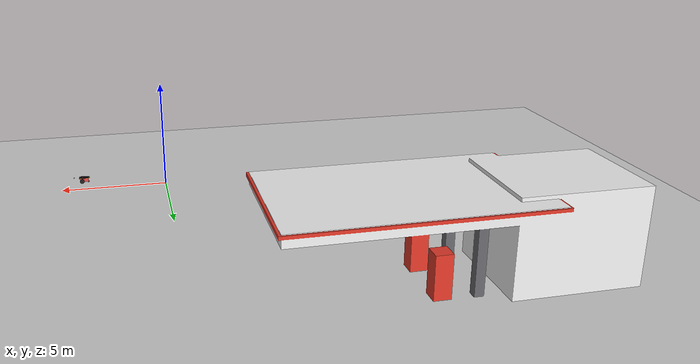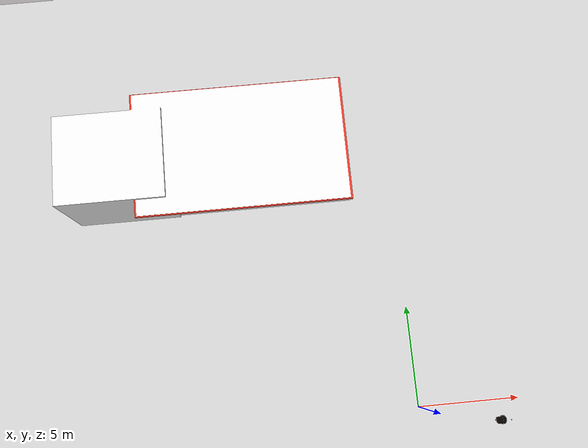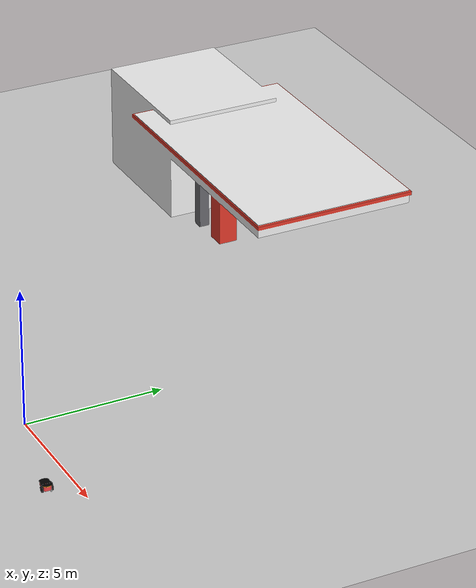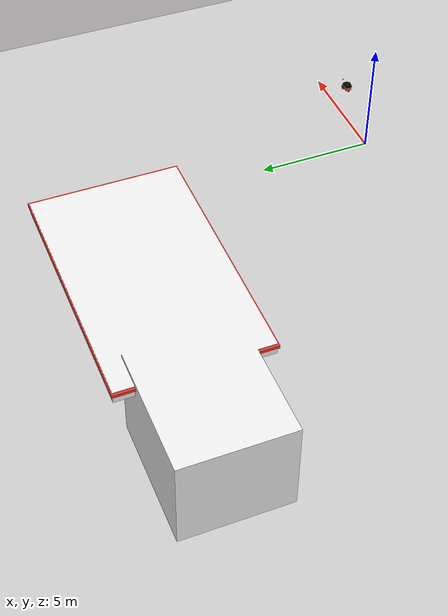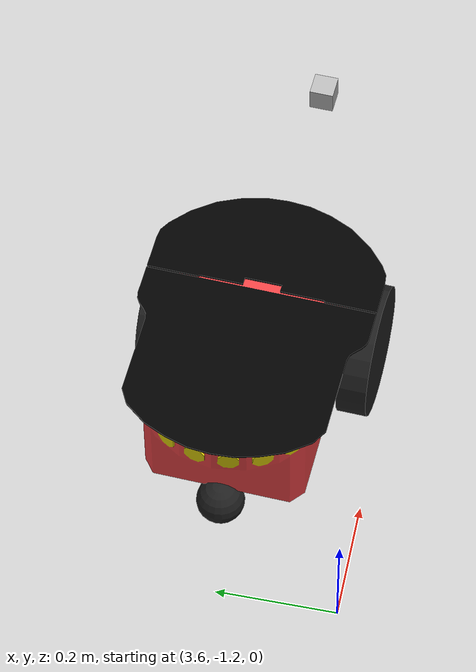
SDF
<sdf version="1.4">
 <world name="default">
  <light name="sun" type="directional">
   <pose>0 0 10 0 -0 0</pose>
   <diffuse>0.8 0.8 0.8 1</diffuse>
   <specular>0.2 0.2 0.2 1</specular>
   <attenuation>
    <range>1000</range>
    <constant>0.9</constant>
    <linear>0.01</linear>
    <quadratic>0.001</quadratic>
   </attenuation>
   <direction>-0.5 0.1 -0.9</direction>
  </light>
  <model name="ground_plane">
   <static>1</static>
   <link name="link">
    <collision name="collision">
     <geometry><plane><normal>0 0 1</normal><size>100 100</size></plane></geometry>
     <surface><friction><ode><mu>100</mu><mu2>50</mu2></ode></friction></surface>
    </collision>
    <visual name="visual">
     <cast_shadows>0</cast_shadows>
     <geometry><plane><normal>0 0 1</normal><size>100 100</size></plane></geometry>
     <material>
      <script><uri>file://media/materials/scripts/gazebo.material</uri><name>Gazebo/Grey</name></script>
     </material>
    </visual>
    <velocity_decay><linear>0</linear><angular>0</angular></velocity_decay>
   </link>
  </model>
  <physics type="ode">
   <max_step_size>0.001</max_step_size>
   <real_time_factor>1</real_time_factor>
   <real_time_update_rate>1000</real_time_update_rate>
   <gravity>0 0 -9.8</gravity>
  </physics>
  <scene><ambient>0.4 0.4 0.4 1</ambient><background>0.7 0.7 0.7 1</background><shadows>1</shadows></scene>
  <spherical_coordinates>
   <surface_model>EARTH_WGS84</surface_model>
   <latitude_deg>0</latitude_deg>
   <longitude_deg>0</longitude_deg>
   <elevation>0</elevation>
   <heading_deg>0</heading_deg>
  </spherical_coordinates>
  <model name="Gas Station">
   <static>1</static>
   <link name="link">
    <collision name="collision">
     <geometry><mesh><uri>model://gas_station/meshes/gas_station.dae</uri></mesh></geometry>
    </collision>
    <visual name="visual">
     <geometry><mesh><uri>model://gas_station/meshes/gas_station.dae</uri></mesh></geometry>
     <material>
      <script>
       <uri>model://gas_station/materials/scripts</uri>
       <uri>model://gas_station/materials/textures</uri>
       <name>GasStation/Diffuse</name>
      </script>
      <shader type="normal_map_object_space"><normal_map>GasStation_Normal.png</normal_map></shader>
     </material>
    </visual>
    <velocity_decay><linear>0</linear><angular>0</angular></velocity_decay>
   </link>
   <pose>-10 13 0 0 -0 0</pose>
  </model>
  <light name="sun" type="directional">
   <pose>7 -4 10 0 -0 0</pose>
   <diffuse>0.8 0.8 0.8 1</diffuse>
   <specular>0.2 0.2 0.2 1</specular>
   <attenuation>
    <range>1000</range>
    <constant>0.9</constant>
    <linear>0.01</linear>
    <quadratic>0.001</quadratic>
   </attenuation>
   <direction>-0.5 0.1 -0.9</direction>
  </light>
  <model name="pioneer2dx">
   <link name="chassis">
    <pose>0 0 0.16 0 -0 0</pose>
    <inertial>
     <mass>5.67</mass>
     <inertia><ixx>0.07</ixx><iyy>0.08</iyy><izz>0.1</izz><ixy>0</ixy><ixz>0</ixz><iyz>0</iyz></inertia>
    </inertial>
    <collision name="collision"><geometry><box><size>0.445 0.277 0.17</size></box></geometry></collision>
    <collision name="castor_collision">
     <pose>-0.2 0 -0.12 0 -0 0</pose>
     <geometry><sphere><radius>0.04</radius></sphere></geometry>
     <surface><friction><ode><mu>0</mu><mu2>0</mu2><slip1>1</slip1><slip2>1</slip2></ode></friction></surface>
    </collision>
    <visual name="visual">
     <pose>0 0 0.04 0 -0 0</pose>
     <geometry><mesh><uri>model://pioneer2dx/meshes/chassis.dae</uri></mesh></geometry>
    </visual>
    <visual name="castor_visual">
     <pose>-0.2 0 -0.12 0 -0 0</pose>
     <geometry><sphere><radius>0.04</radius></sphere></geometry>
     <material>
      <script><uri>file://media/materials/scripts/gazebo.material</uri><name>Gazebo/FlatBlack</name></script>
     </material>
    </visual>
    <velocity_decay><linear>0</linear><angular>0</angular></velocity_decay>
    <sensor type="camera" name="camera1">
     <update_rate>30.0</update_rate>
     <camera name="head">
      <horizontal_fov>1.3962634</horizontal_fov>
      <image><width>800</width><height>600</height><format>R8G8B8</format></image>
      <clip><near>0.1</near><far>300</far></clip>
      <noise><type>gaussian</type><mean>0.0</mean><stddev>0.007</stddev></noise>
     </camera>
     <plugin name="camera_controller" filename="libgazebo_ros_camera.so">
      <alwaysOn>true</alwaysOn>
      <updateRate>0.0</updateRate>
      <cameraName>pioneer2dx/camera1</cameraName>
      <imageTopicName>image_raw</imageTopicName>
      <cameraInfoTopicName>camera_info</cameraInfoTopicName>
      <frameName>camera_link</frameName>
      <hackBaseline>0.07</hackBaseline>
      <distortionK1>0.0</distortionK1>
      <distortionK2>0.0</distortionK2>
      <distortionK3>0.0</distortionK3>
      <distortionT1>0.0</distortionT1>
      <distortionT2>0.0</distortionT2>
     </plugin>
    </sensor>
   </link>
   <link name="right_wheel">
    <pose>0.1 -0.17 0.11 0 1.5707 1.5707</pose>
    <inertial>
     <mass>1.5</mass>
     <inertia><ixx>0.0051</ixx><iyy>0.0051</iyy><izz>0.009</izz><ixy>0</ixy><ixz>0</ixz><iyz>0</iyz></inertia>
    </inertial>
    <collision name="collision">
     <geometry><cylinder><radius>0.11</radius><length>0.05</length></cylinder></geometry>
     <surface>
      <friction><ode><mu>100000</mu><mu2>100000</mu2><slip1>0</slip1><slip2>0</slip2></ode></friction>
     </surface>
    </collision>
    <visual name="visual">
     <geometry><cylinder><radius>0.11</radius><length>0.05</length></cylinder></geometry>
     <material>
      <script><uri>file://media/materials/scripts/gazebo.material</uri><name>Gazebo/FlatBlack</name></script>
     </material>
    </visual>
    <velocity_decay><linear>0</linear><angular>0</angular></velocity_decay>
   </link>
   <link name="left_wheel">
    <pose>0.1 0.17 0.11 0 1.5707 1.5707</pose>
    <inertial>
     <mass>1.5</mass>
     <inertia><ixx>0.0051</ixx><iyy>0.0051</iyy><izz>0.009</izz><ixy>0</ixy><ixz>0</ixz><iyz>0</iyz></inertia>
    </inertial>
    <collision name="collision">
     <geometry><cylinder><radius>0.11</radius><length>0.05</length></cylinder></geometry>
     <surface>
      <friction><ode><mu>100000</mu><mu2>100000</mu2><slip1>0</slip1><slip2>0</slip2></ode></friction>
     </surface>
    </collision>
    <visual name="visual">
     <geometry><cylinder><radius>0.11</radius><length>0.05</length></cylinder></geometry>
     <material>
      <script><uri>file://media/materials/scripts/gazebo.material</uri><name>Gazebo/FlatBlack</name></script>
     </material>
    </visual>
    <velocity_decay><linear>0</linear><angular>0</angular></velocity_decay>
   </link>
   <link name="camera_link">
    <collision name="collision">
     <pose>0.5 0 0.25 0 -0 0</pose>
     <geometry><box><size>0.04 0.04 0.04</size></box></geometry>
     <surface><friction><ode><mu>0</mu><mu2>0</mu2><slip1>1</slip1><slip2>1</slip2></ode></friction></surface>
    </collision>
    <visual name="visual">
     <pose>0.5 0 0.25 0 -0 0</pose>
     <geometry><box><size>0.04 0.04 0.04</size></box></geometry>
    </visual>
   </link>
   <joint name="camera_joint" type="revolute">
    <pose>0.5 0 0.25 0 0 0</pose>
    <child>camera_link</child>
    <parent>chassis</parent>
    <axis><xyz>0 0 1</xyz><limit><upper>0</upper><lower>0</lower></limit></axis>
   </joint>
   <joint name="left_wheel_hinge" type="revolute">
    <pose>0 0 -0.03 0 -0 0</pose>
    <child>left_wheel</child>
    <parent>chassis</parent>
    <axis><xyz>0 1 0</xyz><limit><lower>-1e+16</lower><upper>1e+16</upper></limit></axis>
   </joint>
   <joint name="right_wheel_hinge" type="revolute">
    <pose>0 0 0.03 0 -0 0</pose>
    <child>right_wheel</child>
    <parent>chassis</parent>
    <axis><xyz>0 1 0</xyz><limit><lower>-1e+16</lower><upper>1e+16</upper></limit></axis>
   </joint>
   <plugin name="differential_drive_controller" filename="libgazebo_ros_diff_drive.so">
    <alwaysOn>true</alwaysOn>
    <updateRate>100</updateRate>
    <leftJoint>left_wheel_hinge</leftJoint>
    <rightJoint>right_wheel_hinge</rightJoint>
    <wheelSeparation>0.39</wheelSeparation>
    <wheelDiameter>0.15</wheelDiameter>
    <torque>5</torque>
    <commandTopic>cmd_vel</commandTopic>
    <odometryTopic>odom</odometryTopic>
    <odometryFrame>odom</odometryFrame>
    <robotBaseFrame>chassis</robotBaseFrame>
   </plugin>
   <pose>3.94897 -0.987598 2e-06 -2e-06 -9e-06 -0.049254</pose>
   <static>0</static>
  </model>
 </world>
</sdf>
